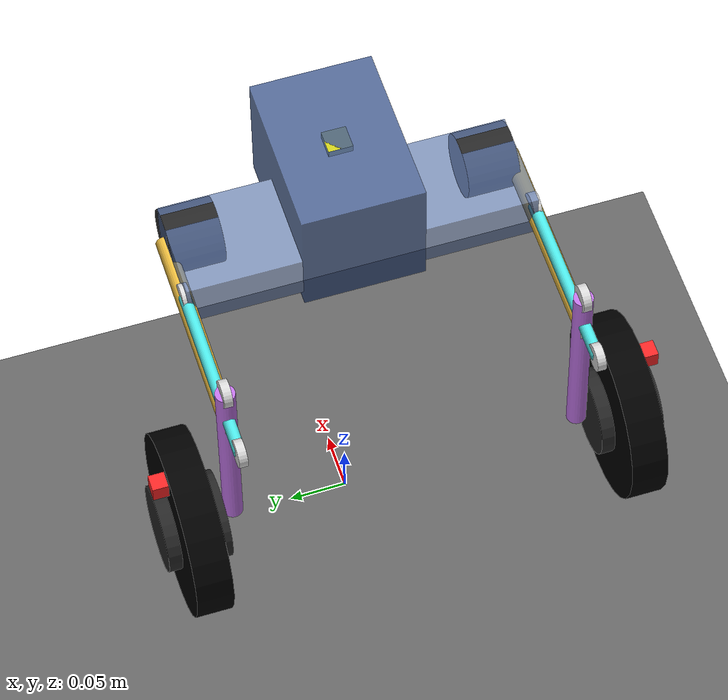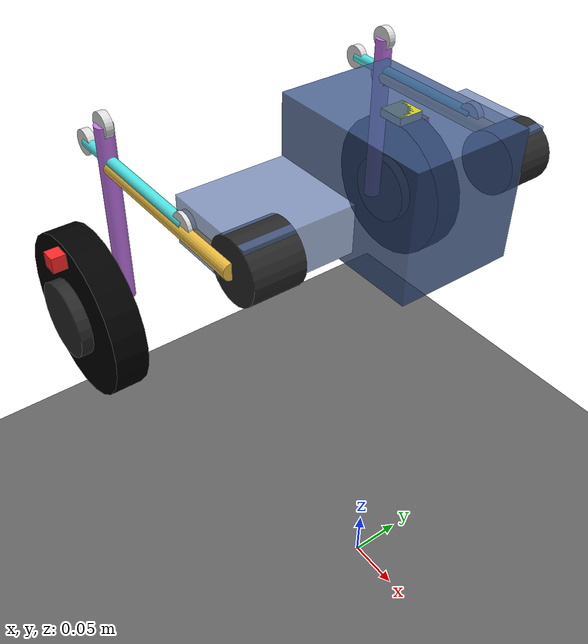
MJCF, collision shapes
<mujoco model="lqr_balance">
  <option gravity="0 0 -9.81" timestep="0.0005" solver="Newton"
          iterations="200" tolerance="1e-10"/>
  <visual><global offwidth="1280" offheight="720"/></visual>
  <asset>
    <mesh name="torus_wheel" file="torus_wheel.stl" scale="1 1 1"/>
    <texture name="checker" type="2d" builtin="checker" width="512" height="512"
             rgb1="0.50 0.50 0.50" rgb2="0.28 0.28 0.28"/>
    <material name="floor_mat" texture="checker" texrepeat="50 50" reflectance="0.12"/>
    <texture name="wall_tex" type="2d" builtin="flat" width="1" height="1"
             rgb1="0.68 0.64 0.58"/>
    <material name="wall_mat" texture="wall_tex" reflectance="0.04"/>
  </asset>
  <worldbody>
    <light name="sun"   pos="0 0 4"    dir="0 0 -1"   diffuse="0.80 0.80 0.75" castshadow="true"/>
    <light name="front" pos="0 -3 2.5" dir="0  1 -0.8" diffuse="0.40 0.40 0.45"/>
    <light name="back"  pos="0  3 2.5" dir="0 -1 -0.8" diffuse="0.40 0.40 0.45"/>

    <geom name="ground" type="plane" size="10 5 0.1"
          material="floor_mat" condim="3" friction="0.8 0.01 0.001"
          solref="0.04 1" solimp="0.9 0.95 0.001"/>

    <!-- == Body =========================================================== -->
    <body name="box" pos="0 0 0.45">
      <joint name="root_free" type="free"/>
      <inertial pos="0 0 0" mass="1.9500"
                diaginertia="8.0e-4 1.2e-3 1.2e-3"/>
      <geom name="chassis" type="box"
            size="0.0700 0.0500 0.0520"
            rgba="0.25 0.35 0.55 0.85" mass="0"
            contype="0" conaffinity="0"/>
      <geom name="arm_L" type="box"
            pos="-0.02694 0.09650 -0.01835"
            size="0.04194 0.04650 0.02014"
            rgba="0.35 0.45 0.65 0.70" mass="0" contype="0" conaffinity="0"/>
      <geom name="arm_R" type="box"
            pos="-0.02694 -0.09650 -0.01835"
            size="0.04194 0.04650 0.02014"
            rgba="0.35 0.45 0.65 0.70" mass="0" contype="0" conaffinity="0"/>
      <geom name="motor_L" type="cylinder"
            pos="0 0.12150 -0.02350" euler="90 0 0"
            size="0.0265 0.0215" rgba="0.15 0.15 0.15 0.90"
            mass="0" contype="0" conaffinity="0"/>
      <geom name="motor_R" type="cylinder"
            pos="0 -0.12150 -0.02350" euler="90 0 0"
            size="0.0265 0.0215" rgba="0.15 0.15 0.15 0.90"
            mass="0" contype="0" conaffinity="0"/>
      <!-- Electronics (massless, visual only) -->
      <geom type="box" pos="0 0 -0.03000" size="0.060 0.038 0.018"
            rgba="0.20 0.20 0.80 0.70" mass="0" contype="0" conaffinity="0"/>
      <geom type="box" pos="0 0 0.04200" size="0.050 0.030 0.008"
            rgba="0.80 0.30 0.10 0.80" mass="0" contype="0" conaffinity="0"/>
      <geom type="box" pos="0 0 0.02200" size="0.054 0.027 0.006"
            rgba="0.10 0.60 0.10 0.80" mass="0" contype="0" conaffinity="0"/>
      <geom type="box" pos="0 0 0.04900" size="0.010 0.010 0.003"
            rgba="0.80 0.80 0.10 0.90" mass="0" contype="0" conaffinity="0"/>
      <site name="imu_site" pos="0 0 0.04900" size="0.002"/>
            <!-- == L LEG ====================================================== -->
      <body name="coupler_L" pos="-0.05887 0.14300 -0.01821">
        <inertial pos="0 0 0" mass="0.0444" diaginertia="1.8e-5 1.8e-5 2.0e-7"/>
        <joint name="hinge_F_L" type="hinge" axis="0 1 0" damping="0.001"/>
        <geom type="cylinder" pos="0 0 0" euler="90 0 0"
              size="0.011 0.0035" rgba="0.85 0.85 0.85 0.90"
              contype="0" conaffinity="0" mass="0"/>
        <geom name="coupler_geom_L" type="cylinder" fromto="0 0 0 -0.15081 0 0"
              size="0.005" rgba="0.30 0.90 0.90 0.55"
              solref="0.02 1" contype="1" conaffinity="1"/>
        <geom type="cylinder" pos="-0.15081 0 0" euler="90 0 0"
              size="0.011 0.0035" rgba="0.85 0.85 0.85 0.90"
              contype="0" conaffinity="0" mass="0"/>
      </body>
      <body name="femur_L" pos="0 0.14300 -0.02350">
        <inertial pos="0 0 0" mass="0.0367" diaginertia="4.9e-5 4.9e-5 8.2e-7"/>
        <joint name="hip_L" type="hinge" axis="0 1 0"
               range="-180 180" armature="0.01" damping="0.05"/>
        <geom name="femur_geom_L" type="cylinder" fromto="0 0 0 -0.17378 0 0"
              size="0.007" rgba="0.94 0.75 0.25 0.55"
              solref="0.02 1" contype="1" conaffinity="1"/>
        <geom name="knee_geom_L" type="cylinder" pos="-0.17378 0 0"
              euler="90 0 0" size="0.011 0.0035" rgba="0.85 0.85 0.85 0.90"
              contype="0" conaffinity="0" mass="0" solref="0.02 1"/>
        <body name="tibia_L" pos="-0.17378 0 0">
          <inertial pos="0 0 -0.04713" mass="0.0358" diaginertia="4.2e-5 4.2e-5 1.0e-6"/>
          <joint name="knee_joint_L" type="hinge" axis="0 1 0"
                 range="-60 60" damping="0.001"/>
          <geom name="tibia_geom_L" type="cylinder"
                fromto="0 0 0.03513 0 0 -0.12939"
                size="0.008" rgba="0.75 0.45 0.90 0.55"
                solref="0.02 1" contype="1" conaffinity="1"/>
          <geom name="stub_geom_L" type="cylinder" pos="0 0 0.03513"
                euler="90 0 0" size="0.011 0.0035" rgba="0.85 0.85 0.85 0.90"
                contype="0" conaffinity="0" mass="0" solref="0.02 1"/>
          <body name="wheel_asm_L" pos="0 0 -0.12939">
            <joint name="wheel_spin_L" type="hinge" axis="0 1 0" damping="0.001"/>
            <geom name="motor_body_geom_L" type="cylinder"
                  pos="0 0.0360 0" euler="90 0 0"
                  size="0.035 0.026" rgba="0.15 0.15 0.15 0.80"
                  mass="0.2600" solref="0.02 1" contype="1" conaffinity="1"/>
            <geom name="wheel_tire_geom_L" type="cylinder"
                  pos="0 0.0360 0" euler="90 0 0"
                  size="0.075 0.015" rgba="0 0 0 0"
                  friction="0.8 0.01 0.001" solref="0.06 0.9"
                  solimp="0.7 0.95 0.005"
                  mass="0.2600" contype="1" conaffinity="1"/>
            <geom name="wheel_torus_L" type="mesh" mesh="torus_wheel"
                  pos="0 0.0360 0" rgba="0.25 0.70 0.35 0.90"
                  contype="0" conaffinity="0" mass="0"/>
            <geom name="wheel_marker_L" type="box"
                  pos="0 0.0520 0.06150"
                  size="0.007 0.012 0.007" rgba="1.0 0.15 0.15 1.0"
                  contype="0" conaffinity="0" mass="0"/>
          </body>
        </body>
      </body>
            <!-- == R LEG ====================================================== -->
      <body name="coupler_R" pos="-0.05887 -0.14300 -0.01821">
        <inertial pos="0 0 0" mass="0.0444" diaginertia="1.8e-5 1.8e-5 2.0e-7"/>
        <joint name="hinge_F_R" type="hinge" axis="0 1 0" damping="0.001"/>
        <geom type="cylinder" pos="0 0 0" euler="90 0 0"
              size="0.011 0.0035" rgba="0.85 0.85 0.85 0.90"
              contype="0" conaffinity="0" mass="0"/>
        <geom name="coupler_geom_R" type="cylinder" fromto="0 0 0 -0.15081 0 0"
              size="0.005" rgba="0.30 0.90 0.90 0.55"
              solref="0.02 1" contype="1" conaffinity="1"/>
        <geom type="cylinder" pos="-0.15081 0 0" euler="90 0 0"
              size="0.011 0.0035" rgba="0.85 0.85 0.85 0.90"
              contype="0" conaffinity="0" mass="0"/>
      </body>
      <body name="femur_R" pos="0 -0.14300 -0.02350">
        <inertial pos="0 0 0" mass="0.0367" diaginertia="4.9e-5 4.9e-5 8.2e-7"/>
        <joint name="hip_R" type="hinge" axis="0 1 0"
               range="-180 180" armature="0.01" damping="0.05"/>
        <geom name="femur_geom_R" type="cylinder" fromto="0 0 0 -0.17378 0 0"
              size="0.007" rgba="0.94 0.75 0.25 0.55"
              solref="0.02 1" contype="1" conaffinity="1"/>
        <geom name="knee_geom_R" type="cylinder" pos="-0.17378 0 0"
              euler="90 0 0" size="0.011 0.0035" rgba="0.85 0.85 0.85 0.90"
              contype="0" conaffinity="0" mass="0" solref="0.02 1"/>
        <body name="tibia_R" pos="-0.17378 0 0">
          <inertial pos="0 0 -0.04713" mass="0.0358" diaginertia="4.2e-5 4.2e-5 1.0e-6"/>
          <joint name="knee_joint_R" type="hinge" axis="0 1 0"
                 range="-60 60" damping="0.001"/>
          <geom name="tibia_geom_R" type="cylinder"
                fromto="0 0 0.03513 0 0 -0.12939"
                size="0.008" rgba="0.75 0.45 0.90 0.55"
                solref="0.02 1" contype="1" conaffinity="1"/>
          <geom name="stub_geom_R" type="cylinder" pos="0 0 0.03513"
                euler="90 0 0" size="0.011 0.0035" rgba="0.85 0.85 0.85 0.90"
                contype="0" conaffinity="0" mass="0" solref="0.02 1"/>
          <body name="wheel_asm_R" pos="0 0 -0.12939">
            <joint name="wheel_spin_R" type="hinge" axis="0 1 0" damping="0.001"/>
            <geom name="motor_body_geom_R" type="cylinder"
                  pos="0 -0.0360 0" euler="90 0 0"
                  size="0.035 0.026" rgba="0.15 0.15 0.15 0.80"
                  mass="0.2600" solref="0.02 1" contype="1" conaffinity="1"/>
            <geom name="wheel_tire_geom_R" type="cylinder"
                  pos="0 -0.0360 0" euler="90 0 0"
                  size="0.075 0.015" rgba="0 0 0 0"
                  friction="0.8 0.01 0.001" solref="0.06 0.9"
                  solimp="0.7 0.95 0.005"
                  mass="0.2600" contype="1" conaffinity="1"/>
            <geom name="wheel_torus_R" type="mesh" mesh="torus_wheel"
                  pos="0 -0.0360 0" rgba="0.25 0.70 0.35 0.90"
                  contype="0" conaffinity="0" mass="0"/>
            <geom name="wheel_marker_R" type="box"
                  pos="0 -0.0520 0.06150"
                  size="0.007 0.012 0.007" rgba="1.0 0.15 0.15 1.0"
                  contype="0" conaffinity="0" mass="0"/>
          </body>
        </body>
      </body>
    </body>
  </worldbody>

  <equality>
    <connect name="4bar_close_L" body1="coupler_L" body2="tibia_L"
             anchor="0 0 0" solref="0.002 1" solimp="0.9999 0.9999 0.001"/>
    <connect name="4bar_close_R" body1="coupler_R" body2="tibia_R"
             anchor="0 0 0" solref="0.002 1" solimp="0.9999 0.9999 0.001"/>
  </equality>

  <actuator>
    <motor name="hip_act_L"   joint="hip_L"        gear="1"
           ctrllimited="true" ctrlrange="-7.0 7.0"/>
    <motor name="hip_act_R"   joint="hip_R"        gear="1"
           ctrllimited="true" ctrlrange="-7.0 7.0"/>
    <motor name="wheel_act_L" joint="wheel_spin_L" gear="1"
           ctrllimited="true" ctrlrange="-6.8 6.8"/>
    <motor name="wheel_act_R" joint="wheel_spin_R" gear="1"
           ctrllimited="true" ctrlrange="-6.8 6.8"/>
  </actuator>

  <sensor>
    <accelerometer name="accel" site="imu_site"/>
  </sensor>
</mujoco>
